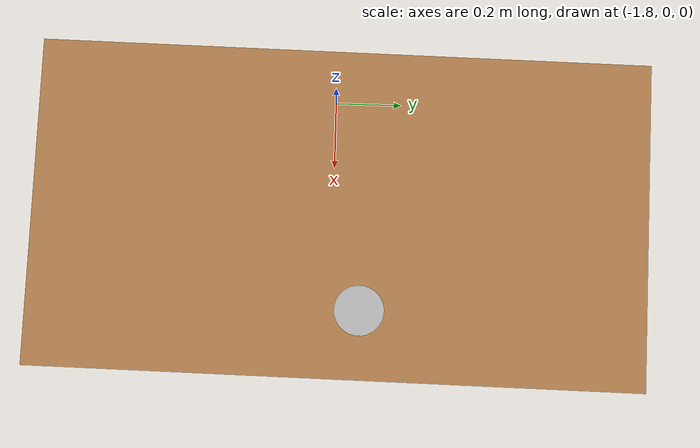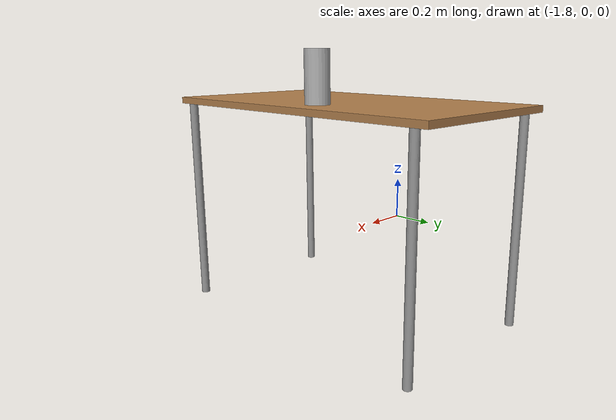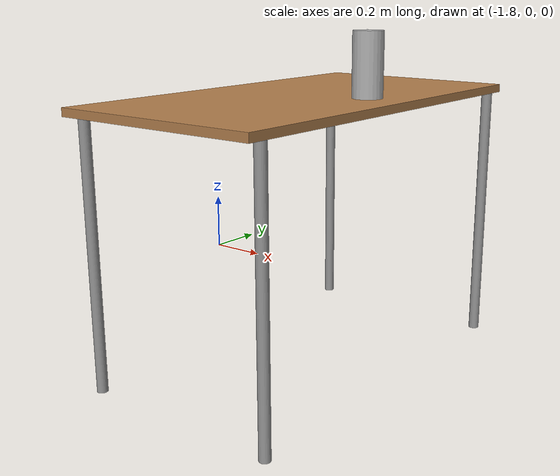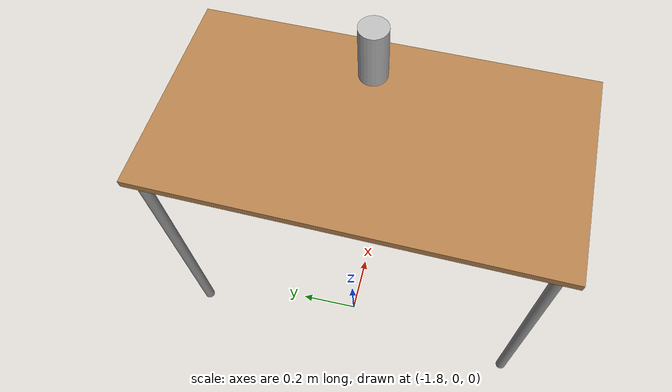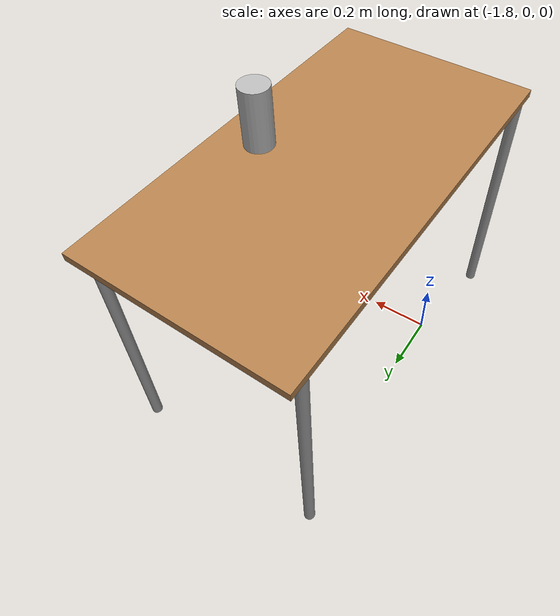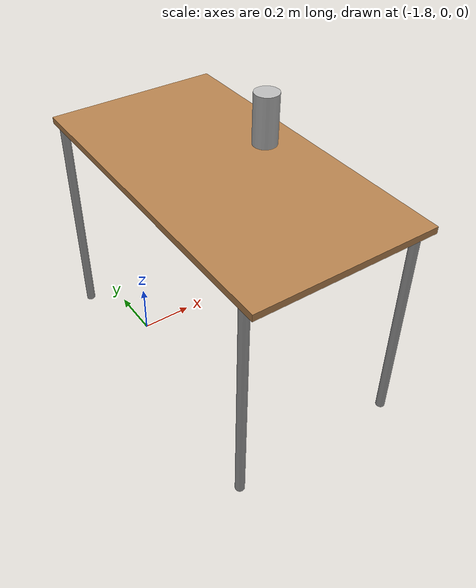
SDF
<sdf version="1.6">
 <world name="default">
  <scene><ambient>0.5 0.5 0.5 1</ambient><background>0.5 0.5 0.5 1</background><shadows>0</shadows></scene>
  <physics name="default_physics" default="0" type="ode">
   <ode>
    <solver>
     <type>quick</type>
     <iters>200</iters>
     <sor>1.3</sor>
     <use_dynamic_moi_rescaling>0</use_dynamic_moi_rescaling>
    </solver>
    <constraints>
     <cfm>0</cfm>
     <erp>0.2</erp>
     <contact_max_correcting_vel>100</contact_max_correcting_vel>
     <contact_surface_layer>0.001</contact_surface_layer>
    </constraints>
   </ode>
   <real_time_update_rate>1000</real_time_update_rate>
   <max_step_size>0.002</max_step_size>
   <real_time_factor>1</real_time_factor>
  </physics>
  <light name="my_light_01" type="directional">
   <pose>0 0 30 0 -0 0</pose>
   <diffuse>0.9 0.9 0.9 1</diffuse>
   <specular>0.6 0.6 0.6 1</specular>
   <attenuation><range>20</range></attenuation>
   <direction>0 0 -1</direction>
   <cast_shadows>0</cast_shadows>
  </light>
  <light name="my_light_02" type="directional">
   <pose>0 0 30 0 -0 0</pose>
   <diffuse>0.9 0.9 0.9 1</diffuse>
   <specular>0.6 0.6 0.6 1</specular>
   <attenuation><range>20</range></attenuation>
   <direction>-1 0 0</direction>
   <cast_shadows>0</cast_shadows>
  </light>
  <light name="my_light_03" type="directional">
   <pose>0 0 30 0 -0 0</pose>
   <diffuse>0.9 0.9 0.9 1</diffuse>
   <specular>0.6 0.6 0.6 1</specular>
   <attenuation><range>20</range></attenuation>
   <direction>0 -1 0</direction>
   <cast_shadows>0</cast_shadows>
  </light>
  <light name="my_light_04" type="directional">
   <pose>0 0 30 0 -0 0</pose>
   <diffuse>0.9 0.9 0.9 1</diffuse>
   <specular>0.6 0.6 0.6 1</specular>
   <attenuation><range>20</range></attenuation>
   <direction>0 0 1</direction>
   <cast_shadows>0</cast_shadows>
  </light>
  <light name="my_light_05" type="directional">
   <pose>0 0 30 0 -0 0</pose>
   <diffuse>0.9 0.9 0.9 1</diffuse>
   <specular>0.6 0.6 0.6 1</specular>
   <attenuation><range>20</range></attenuation>
   <direction>1 0 0</direction>
   <cast_shadows>0</cast_shadows>
  </light>
  <light name="my_light_06" type="directional">
   <pose>0 0 30 0 -0 0</pose>
   <diffuse>0.9 0.9 0.9 1</diffuse>
   <specular>0.6 0.6 0.6 1</specular>
   <attenuation><range>20</range></attenuation>
   <direction>0 1 0</direction>
   <cast_shadows>0</cast_shadows>
  </light>
  <spherical_coordinates>
   <surface_model>EARTH_WGS84</surface_model>
   <latitude_deg>0</latitude_deg>
   <longitude_deg>0</longitude_deg>
   <elevation>0</elevation>
   <heading_deg>0</heading_deg>
  </spherical_coordinates>
  <model name="table">
   <static>1</static>
   <link name="link">
    <collision name="surface">
     <pose>0 0 1 0 -0 0</pose>
     <geometry><box><size>1.5 0.8 0.03</size></box></geometry>
     <surface><friction><ode><mu>0.6</mu><mu2>0.6</mu2></ode></friction></surface>
    </collision>
    <visual name="visual1">
     <pose>0 0 1 0 -0 0</pose>
     <geometry><box><size>1.5 0.8 0.03</size></box></geometry>
     <material>
      <script><uri>file://media/materials/scripts/gazebo.material</uri><name>Gazebo/Wood</name></script>
     </material>
    </visual>
    <collision name="front_left_leg">
     <pose>0.68 0.38 0.5 0 -0 0</pose>
     <geometry><cylinder><radius>0.02</radius><length>1</length></cylinder></geometry>
    </collision>
    <visual name="front_left_leg">
     <pose>0.68 0.38 0.5 0 -0 0</pose>
     <geometry><cylinder><radius>0.02</radius><length>1</length></cylinder></geometry>
     <material>
      <script><uri>file://media/materials/scripts/gazebo.material</uri><name>Gazebo/Grey</name></script>
     </material>
    </visual>
    <collision name="front_right_leg">
     <pose>0.68 -0.38 0.5 0 -0 0</pose>
     <geometry><cylinder><radius>0.02</radius><length>1</length></cylinder></geometry>
    </collision>
    <visual name="front_right_leg">
     <pose>0.68 -0.38 0.5 0 -0 0</pose>
     <geometry><cylinder><radius>0.02</radius><length>1</length></cylinder></geometry>
     <material>
      <script><uri>file://media/materials/scripts/gazebo.material</uri><name>Gazebo/Grey</name></script>
     </material>
    </visual>
    <collision name="back_right_leg">
     <pose>-0.68 -0.38 0.5 0 -0 0</pose>
     <geometry><cylinder><radius>0.02</radius><length>1</length></cylinder></geometry>
    </collision>
    <visual name="back_right_leg">
     <pose>-0.68 -0.38 0.5 0 -0 0</pose>
     <geometry><cylinder><radius>0.02</radius><length>1</length></cylinder></geometry>
     <material>
      <script><uri>file://media/materials/scripts/gazebo.material</uri><name>Gazebo/Grey</name></script>
     </material>
    </visual>
    <collision name="back_left_leg">
     <pose>-0.68 0.38 0.5 0 -0 0</pose>
     <geometry><cylinder><radius>0.02</radius><length>1</length></cylinder></geometry>
    </collision>
    <visual name="back_left_leg">
     <pose>-0.68 0.38 0.5 0 -0 0</pose>
     <geometry><cylinder><radius>0.02</radius><length>1</length></cylinder></geometry>
     <material>
      <script><uri>file://media/materials/scripts/gazebo.material</uri><name>Gazebo/Grey</name></script>
     </material>
    </visual>
   </link>
   <pose>-1.38773 0.023305 -0.38171 0 0 -1.58678</pose>
  </model>
  <model name="beer">
   <link name="link">
    <pose>0 0 0.115 0 -0 0</pose>
    <inertial>
     <mass>0.39</mass>
     <inertia><ixx>0.00058</ixx><ixy>0</ixy><ixz>0</ixz><iyy>0.00058</iyy><iyz>0</iyz><izz>0.00019</izz></inertia>
    </inertial>
    <collision name="collision">
     <geometry><cylinder><radius>0.055</radius><length>0.23</length></cylinder></geometry>
    </collision>
    <visual name="visual">
     <geometry><cylinder><radius>0.055</radius><length>0.23</length></cylinder></geometry>
     <material>
      <script>
       <uri>model://beer/materials/scripts</uri>
       <uri>model://beer/materials/textures</uri>
       <name>Beer/Diffuse</name>
      </script>
     </material>
    </visual>
   </link>
   <pose>-1.15031 0.071511 0.633286 6.8e-05 -1.4e-05 -0.664156</pose>
  </model>
  <gravity>0 0 -9.8</gravity>
  <magnetic_field>6e-06 2.3e-05 -4.2e-05</magnetic_field>
  <atmosphere type="adiabatic"/>
 </world>
</sdf>
